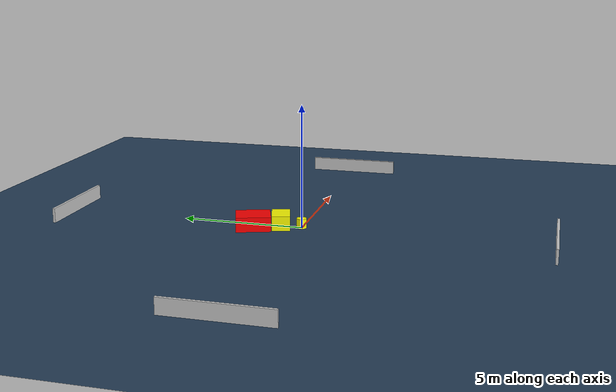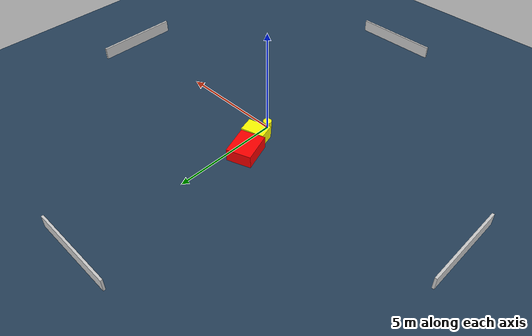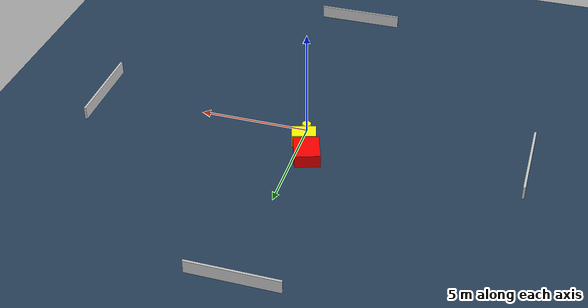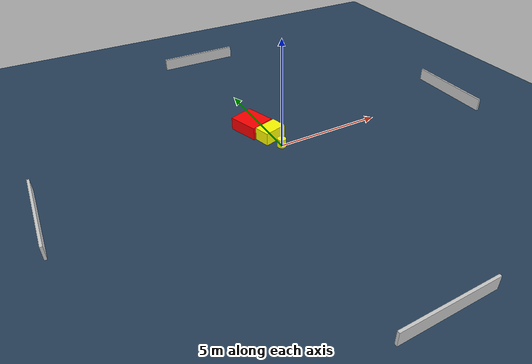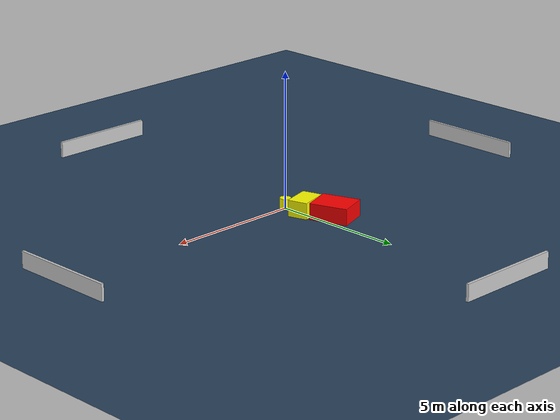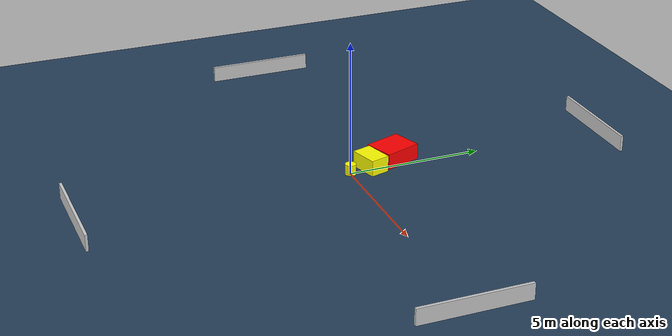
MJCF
<?xml version="1.0" ?>
<mujoco model="generated_environment">
  <option timestep="0.01" integrator="RK4" cone="elliptic"/>
  <default>
    <geom density="1"/>
  </default>
  <asset>
    <texture builtin="gradient" height="3072" name="skybox" rgb1="0.3 0.5 0.7" rgb2="0 0 0" type="skybox" width="512"/>
    <texture builtin="checker" height="300" name="groundplane" rgb1="0.2 0.3 0.4" rgb2="0.1 0.2 0.3" type="2d" width="300"/>
    <material name="groundplane" reflectance="0.2" texrepeat="5 5" texture="groundplane"/>
  </asset>
  <worldbody>
    <light dir="0 0 -1" directional="true" pos="0 0 1.5"/>
    <geom condim="3" friction="0.5 0.005 0.001" material="groundplane" name="floor" pos="0 0 0" size="0 0 0.05" type="plane"/>
    <body name="walls">
      <geom name="wall_1" condim="4" pos="-10.0 0.0 0.3" rgba="0.800000011920929 0.800000011920929 0.800000011920929 1.0" size="0.05 2.0 0.3" type="box"/>
      <geom name="wall_2" condim="4" pos="10.0 0.0 0.3" rgba="0.800000011920929 0.800000011920929 0.800000011920929 1.0" size="0.05 2.0 0.3" type="box"/>
      <geom name="wall_3" condim="4" pos="0.0 -10.0 0.3" rgba="0.800000011920929 0.800000011920929 0.800000011920929 1.0" size="2.0 0.05 0.3" type="box"/>
      <geom name="wall_4" condim="4" pos="0.0 10.0 0.3" rgba="0.800000011920929 0.800000011920929 0.800000011920929 1.0" size="2.0 0.05 0.3" type="box"/>
    </body>
    <body name="robot">
      <joint name="joint_x" type="slide" pos="0 0 0" axis="1 0 0"/>
      <joint name="joint_y" type="slide" pos="0 0 0" axis="0 1 0"/>
      <geom name="robot" type="cylinder" pos="0.0 0.0 0.2" size="0.2 0.2 0.0" mass="5.0" friction="1.0 0.005 0.0001" condim="4" rgba="1.0 1.0 0.0 1.0"/>
    </body>
    <body name="obstacle_1_movable">
      <geom name="obstacle_1_movable" condim="4" pos="-0.12258163365057653 0.8386992319375222 0.3" euler="0 0 105.8721993427369" friction="0.0 0.005 0.001" rgba="1.0 1.0 0.0 1.0" size="0.3664043777274877 0.5473437347950236 0.3" type="box" mass="0.1"/>
      <joint type="free"/>
    </body>
    <body name="obstacle_2_static">
      <geom name="obstacle_2_static" condim="4" pos="-0.5464040744867869 1.8797864284952581 0.3" euler="0 0 109.25658963323245" friction="0.0 0.005 0.001" rgba="1.0 0.0 0.0 1.0" size="0.7060227016262979 0.5750909878079828 0.3" type="box"/>
    </body>
  </worldbody>
  <actuator>
    <motor name="actuator_x" joint="joint_x" gear="1" ctrlrange="-1 1"/>
    <motor name="actuator_y" joint="joint_y" gear="1" ctrlrange="-1 1"/>
  </actuator>
</mujoco>
